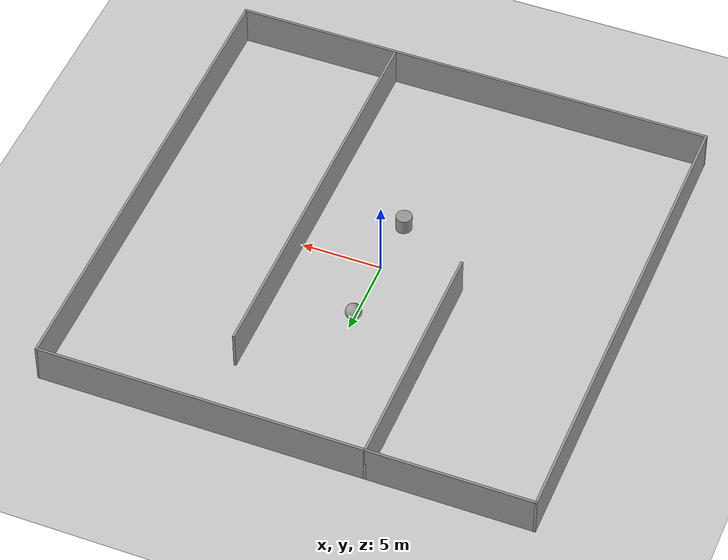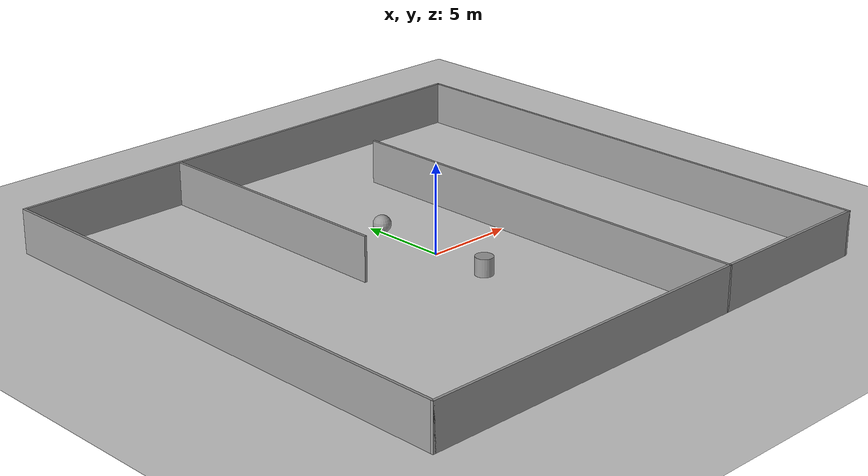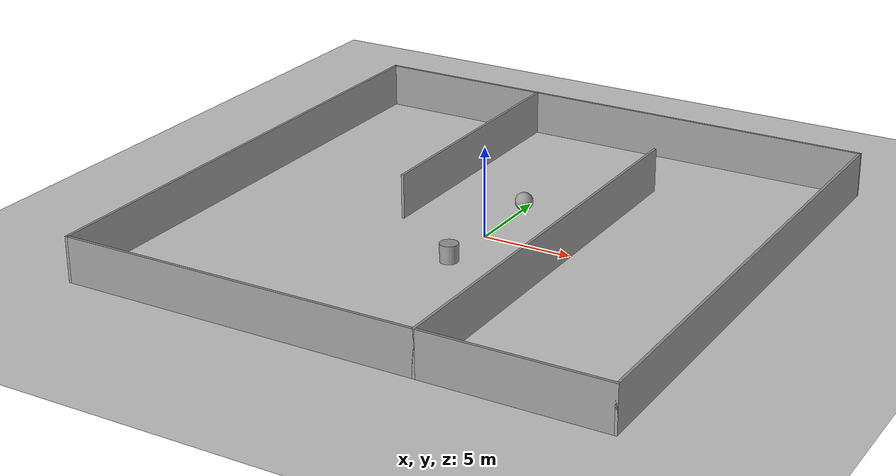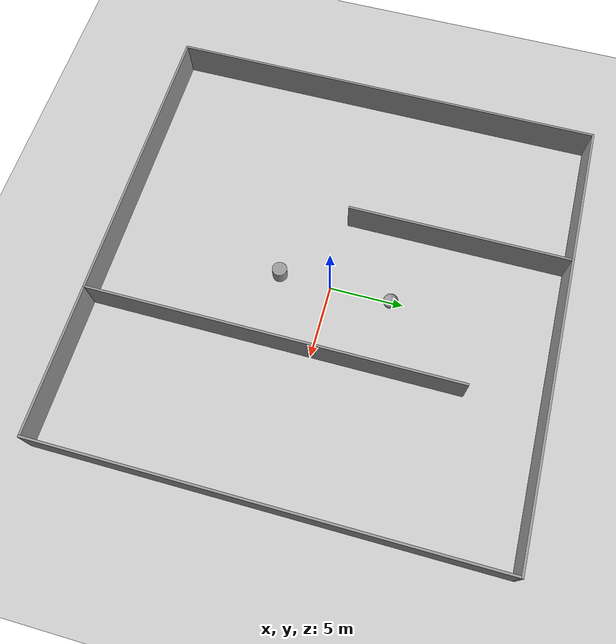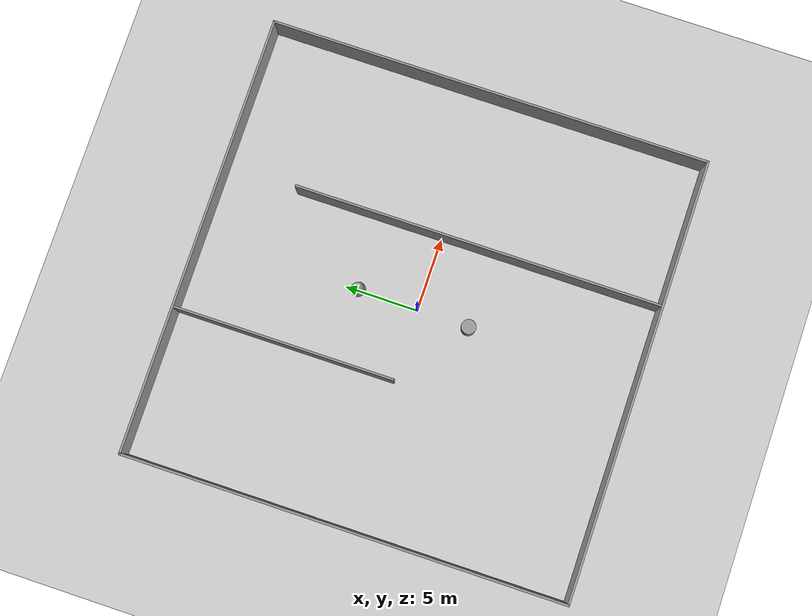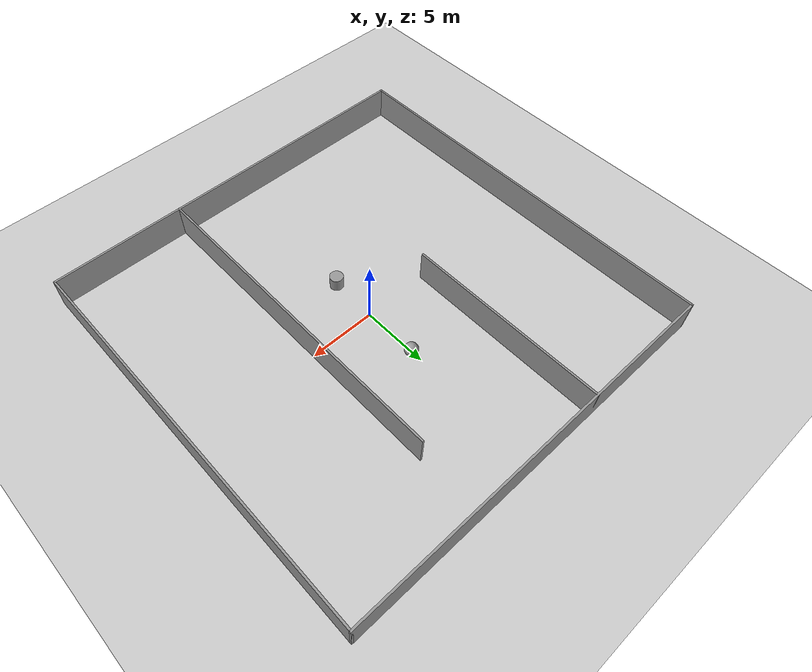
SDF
<sdf version="1.6">
 <world name="default">
  <light name="sun" type="directional">
   <pose>0 0 10 0 -0 0</pose>
   <diffuse>0.8 0.8 0.8 1</diffuse>
   <specular>0.2 0.2 0.2 1</specular>
   <attenuation>
    <range>1000</range>
    <constant>0.9</constant>
    <linear>0.01</linear>
    <quadratic>0.001</quadratic>
   </attenuation>
   <direction>-0.5 0.1 -0.9</direction>
  </light>
  <model name="ground_plane">
   <static>1</static>
   <link name="link">
    <collision name="collision">
     <geometry><plane><normal>0 0 1</normal><size>100 100</size></plane></geometry>
     <surface>
      <contact><collide_bitmask>65535</collide_bitmask></contact>
      <friction><ode><mu>100</mu><mu2>50</mu2></ode></friction>
     </surface>
    </collision>
    <visual name="visual">
     <cast_shadows>0</cast_shadows>
     <geometry><plane><normal>0 0 1</normal><size>100 100</size></plane></geometry>
     <material>
      <script><uri>file://media/materials/scripts/gazebo.material</uri><name>Gazebo/Grey</name></script>
     </material>
    </visual>
   </link>
  </model>
  <gravity>0 0 -9.8</gravity>
  <magnetic_field>6e-06 2.3e-05 -4.2e-05</magnetic_field>
  <atmosphere type="adiabatic"/>
  <physics name="default_physics" default="0" type="ode">
   <max_step_size>0.001</max_step_size>
   <real_time_factor>1</real_time_factor>
   <real_time_update_rate>1000</real_time_update_rate>
  </physics>
  <scene><ambient>0.4 0.4 0.4 1</ambient><background>0.7 0.7 0.7 1</background><shadows>1</shadows></scene>
  <spherical_coordinates>
   <surface_model>EARTH_WGS84</surface_model>
   <latitude_deg>0</latitude_deg>
   <longitude_deg>0</longitude_deg>
   <elevation>0</elevation>
   <heading_deg>0</heading_deg>
  </spherical_coordinates>
  <model name="model_3">
   <link name="Wall_0">
    <collision name="Wall_0_Collision">
     <geometry><box><size>30.15 0.15 2.5</size></box></geometry>
     <pose>0 0 1.25 0 -0 0</pose>
    </collision>
    <visual name="Wall_0_Visual">
     <pose>0 0 1.25 0 -0 0</pose>
     <geometry><box><size>30.15 0.15 2.5</size></box></geometry>
     <material>
      <script><uri>file://media/materials/scripts/gazebo.material</uri><name>Gazebo/Grey</name></script>
      <ambient>1 1 1 1</ambient>
     </material>
     <meta><layer>0</layer></meta>
    </visual>
    <pose>-15 0 0 0 -0 1.5708</pose>
   </link>
   <link name="Wall_12">
    <collision name="Wall_12_Collision">
     <geometry><box><size>25.15 0.15 2.5</size></box></geometry>
     <pose>0 0 1.25 0 -0 0</pose>
    </collision>
    <visual name="Wall_12_Visual">
     <pose>0 0 1.25 0 -0 0</pose>
     <geometry><box><size>25.15 0.15 2.5</size></box></geometry>
     <material>
      <script><uri>file://media/materials/scripts/gazebo.material</uri><name>Gazebo/Grey</name></script>
      <ambient>1 1 1 1</ambient>
     </material>
     <meta><layer>0</layer></meta>
    </visual>
    <pose>5 -2.5 0 0 -0 1.5708</pose>
   </link>
   <link name="Wall_2">
    <collision name="Wall_2_Collision">
     <geometry><box><size>30.15 0.15 2.5</size></box></geometry>
     <pose>0 0 1.25 0 -0 0</pose>
    </collision>
    <visual name="Wall_2_Visual">
     <pose>0 0 1.25 0 -0 0</pose>
     <geometry><box><size>30.15 0.15 2.5</size></box></geometry>
     <material>
      <script><uri>file://media/materials/scripts/gazebo.material</uri><name>Gazebo/Grey</name></script>
      <ambient>1 1 1 1</ambient>
     </material>
     <meta><layer>0</layer></meta>
    </visual>
    <pose>0 15 0 0 -0 0</pose>
   </link>
   <link name="Wall_4">
    <collision name="Wall_4_Collision">
     <geometry><box><size>30.15 0.15 2.5</size></box></geometry>
     <pose>0 0 1.25 0 -0 0</pose>
    </collision>
    <visual name="Wall_4_Visual">
     <pose>0 0 1.25 0 -0 0</pose>
     <geometry><box><size>30.15 0.15 2.5</size></box></geometry>
     <material>
      <script><uri>file://media/materials/scripts/gazebo.material</uri><name>Gazebo/Grey</name></script>
      <ambient>1 1 1 1</ambient>
     </material>
     <meta><layer>0</layer></meta>
    </visual>
    <pose>15 0 0 0 -0 1.5708</pose>
   </link>
   <link name="Wall_6">
    <collision name="Wall_6_Collision">
     <geometry><box><size>30.15 0.15 2.5</size></box></geometry>
     <pose>0 0 1.25 0 -0 0</pose>
    </collision>
    <visual name="Wall_6_Visual">
     <pose>0 0 1.25 0 -0 0</pose>
     <geometry><box><size>30.15 0.15 2.5</size></box></geometry>
     <material>
      <script><uri>file://media/materials/scripts/gazebo.material</uri><name>Gazebo/Grey</name></script>
      <ambient>1 1 1 1</ambient>
     </material>
     <meta><layer>0</layer></meta>
    </visual>
    <pose>0 -15 0 0 -0 0</pose>
   </link>
   <link name="Wall_8">
    <collision name="Wall_8_Collision">
     <geometry><box><size>15.15 0.15 2.5</size></box></geometry>
     <pose>0 0 1.25 0 -0 0</pose>
    </collision>
    <visual name="Wall_8_Visual">
     <pose>0 0 1.25 0 -0 0</pose>
     <geometry><box><size>15.15 0.15 2.5</size></box></geometry>
     <material>
      <script><uri>file://media/materials/scripts/gazebo.material</uri><name>Gazebo/Grey</name></script>
      <ambient>1 1 1 1</ambient>
     </material>
     <meta><layer>0</layer></meta>
    </visual>
    <pose>-5 7.5 0 0 -0 -1.5708</pose>
   </link>
   <static>1</static>
  </model>
  <model name="unit_sphere">
   <pose>0.066495 4.15546 0.5 0 -0 0</pose>
   <link name="link">
    <inertial>
     <mass>1</mass>
     <inertia><ixx>0.1</ixx><ixy>0</ixy><ixz>0</ixz><iyy>0.1</iyy><iyz>0</iyz><izz>0.1</izz></inertia>
    </inertial>
    <collision name="collision"><geometry><sphere><radius>0.5</radius></sphere></geometry></collision>
    <visual name="visual">
     <geometry><sphere><radius>0.5</radius></sphere></geometry>
     <material>
      <script><name>Gazebo/Grey</name><uri>file://media/materials/scripts/gazebo.material</uri></script>
     </material>
    </visual>
   </link>
  </model>
  <model name="unit_cylinder">
   <pose>-0.056871 -3.53202 0.499997 3e-06 4e-06 -0</pose>
   <link name="link">
    <inertial>
     <mass>1</mass>
     <inertia><ixx>0.145833</ixx><ixy>0</ixy><ixz>0</ixz><iyy>0.145833</iyy><iyz>0</iyz><izz>0.125</izz></inertia>
    </inertial>
    <collision name="collision">
     <geometry><cylinder><radius>0.5</radius><length>1</length></cylinder></geometry>
    </collision>
    <visual name="visual">
     <geometry><cylinder><radius>0.5</radius><length>1</length></cylinder></geometry>
     <material>
      <script><name>Gazebo/Grey</name><uri>file://media/materials/scripts/gazebo.material</uri></script>
     </material>
    </visual>
   </link>
  </model>
 </world>
</sdf>
